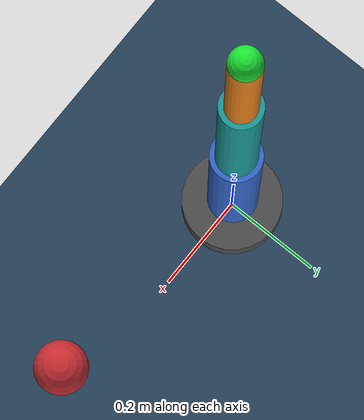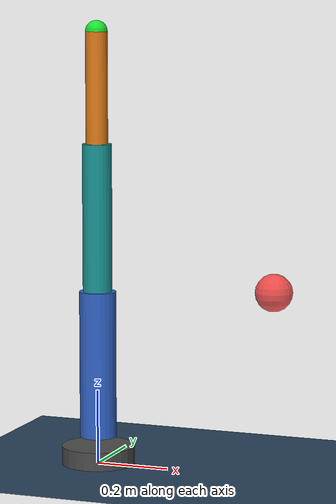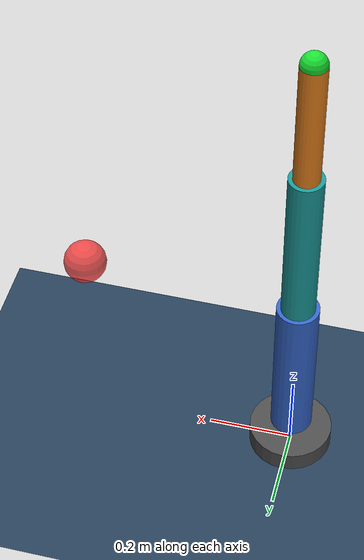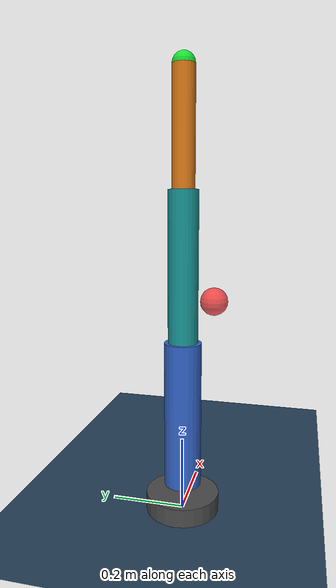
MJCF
<mujoco model="robot_arm">
  <compiler angle="radian" meshdir="."/>
  <option timestep="0.00416" gravity="0 0 -9.81"/> <!-- 1/240 approx 0.00416 -->

  <visual>
    <headlight diffuse="0.6 0.6 0.6" ambient="0.1 0.1 0.1" specular="0 0 0"/>
    <rgba haze="0.15 0.25 0.35 1"/>
    <global azimuth="120" elevation="-20"/>
  </visual>

  <asset>
    <texture type="skybox" builtin="gradient" rgb1="0.3 0.5 0.7" rgb2="0 0 0" width="512" height="3072"/>
    <texture type="2d" name="groundplane" builtin="checker" rgb1="0.2 0.3 0.4" rgb2="0.1 0.2 0.3" width="100" height="100"/>
    <material name="groundplane" texture="groundplane" texrepeat="10 10" reflectance="0.2"/>

    <material name="dark_gray" rgba="0.3 0.3 0.3 1"/>
    <material name="blue" rgba="0.2 0.4 0.8 1"/>
    <material name="teal" rgba="0.1 0.6 0.6 1"/>
    <material name="orange" rgba="0.9 0.5 0.1 1"/>
    <material name="green" rgba="0.1 0.9 0.2 1"/>
    <material name="red" rgba="1 0.2 0.2 0.8"/>
  </asset>

  <worldbody>
    <light pos="0 0 1.5" dir="0 0 -1" directional="true"/>
    <geom name="floor" size="0 0 0.05" type="plane" material="groundplane"/>

    <!-- Base Link -->
    <body name="base_link" pos="0 0 0.025">
      <geom type="cylinder" size="0.1 0.025" material="dark_gray"/> <!-- size is radius, half-length -->

      <!-- Link 1 -->
      <!-- Joint 1 origin was 0 0 0.05 from base_link origin -->
      <!-- But in MJCF bodies are nested. Relative pos. -->
      <body name="link_1" pos="0 0 0.05">
        <joint name="joint_1" type="hinge" axis="0 0 1" range="-3.14159 3.14159" damping="0.5" frictionloss="0.1"/>
        <!-- Link visual/collision. Origin was 0 0 0.2 relative to joint frame -->
        <geom type="cylinder" size="0.05 0.2" pos="0 0 0.2" material="blue"/>

        <!-- Link 2 -->
        <!-- Joint 2 origin was 0 0 0.4 from link_1 origin (which was joint_1 argin) -->
        <body name="link_2" pos="0 0 0.4">
          <joint name="joint_2" type="hinge" axis="0 1 0" range="-3.14159 3.14159" damping="0.5" frictionloss="0.1"/>
          <!-- Link visual/collision. Origin was 0 0 0.2 -->
          <geom type="cylinder" size="0.04 0.2" pos="0 0 0.2" material="teal"/>

          <!-- Link 3 -->
          <!-- Joint 3 origin was 0 0 0.4 from link_2 origin -->
          <body name="link_3" pos="0 0 0.4">
            <joint name="joint_3" type="hinge" axis="0 1 0" range="-3.14159 3.14159" damping="0.5" frictionloss="0.1"/>
            <!-- Link visual/collision. Origin was 0 0 0.15 -->
            <geom type="cylinder" size="0.03 0.15" pos="0 0 0.15" material="orange"/>

            <!-- End Effector -->
            <!-- Fixed joint in URDF is just a site or fixed body in MJCF -->
            <!-- Origin was 0 0 0.3 from link_3 origin (joint_3) -->
            <body name="ee_link" pos="0 0 0.3">
               <geom type="sphere" size="0.03" material="green"/>
               <site name="ee_site" pos="0 0 0" size="0.01" rgba="1 0 0 0"/>
            </body>
          </body>
        </body>
      </body>
    </body>

    <!-- Target (Mocap body so we can move it freely) -->
    <body name="target" mocap="true" pos="0.5 0 0.5">
      <geom type="sphere" size="0.05" material="red" contype="0" conaffinity="0"/>
    </body>

  </worldbody>

  <actuator>
    <!-- Motor/Torque control. Gear=1 for direct torque equivalent -->
    <!-- ctrlrange matches URDF effort limit -->
    <motor name="actuator_1" joint="joint_1" gear="1" ctrllimited="true" ctrlrange="-50 50"/>
    <motor name="actuator_2" joint="joint_2" gear="1" ctrllimited="true" ctrlrange="-50 50"/>
    <motor name="actuator_3" joint="joint_3" gear="1" ctrllimited="true" ctrlrange="-50 50"/>
  </actuator>

</mujoco>
